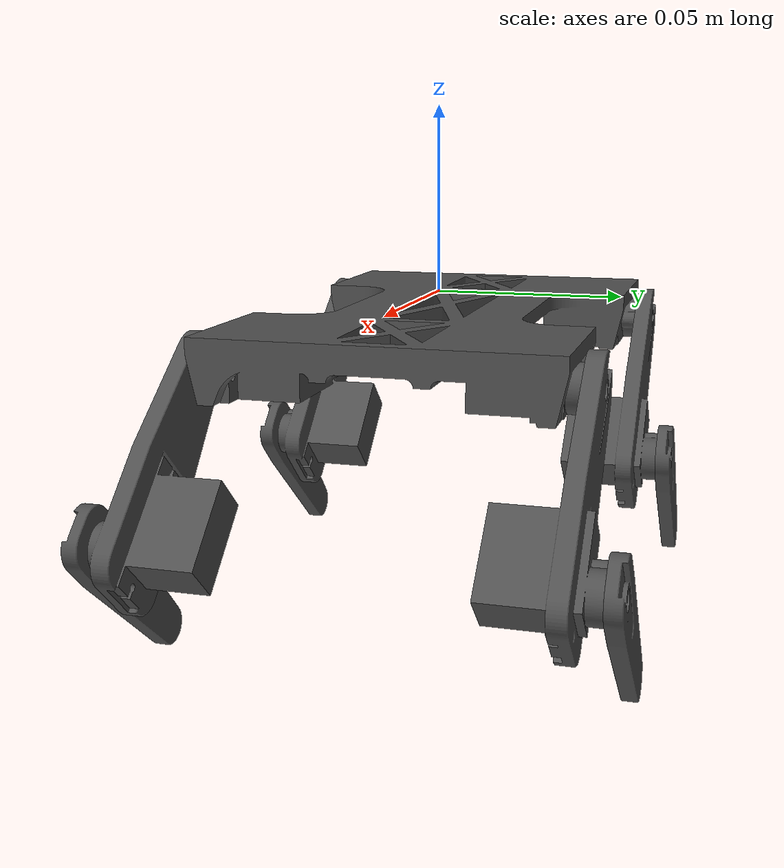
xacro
<?xml version="1.0" ?>
<robot name="svdog2_2" xmlns:xacro="http://www.ros.org/wiki/xacro">

<xacro:include filename="$(find svdog2_2_description)/urdf/materials.xacro" />
<xacro:include filename="$(find svdog2_2_description)/urdf/svdog2_2.trans" />
<link name="base_link">
  <inertial>
    <origin xyz="-5.624212056449514e-05 0.002508800042642536 -0.009416344958760807" rpy="0 0 0"/>
    <mass value="0.07930588131469539"/>
    <inertia ixx="6.5e-05" iyy="0.000179" izz="0.000241" ixy="0.0" iyz="-0.0" ixz="-0.0"/>
  </inertial>
  <visual>
    <origin xyz="0 0 0" rpy="0 0 0"/>
    <geometry>
      <mesh filename="package://svdog2_2_description/meshes/base_link.stl" scale="0.001 0.001 0.001"/>
    </geometry>
    <material name="smooth_white"/>
  </visual>
  <collision>
    <origin xyz="0 0 0" rpy="0 0 0"/>
    <geometry>
      <mesh filename="package://svdog2_2_description/meshes/base_link.stl" scale="0.001 0.001 0.001"/>
    </geometry>
  </collision>
</link>

<link name="servo_leg_test_02_8">
  <inertial>
    <origin xyz="0.02613839119394082 -0.0010712301742271668 -0.026139027739486474" rpy="0 0 0"/>
    <mass value="0.012249665999094939"/>
    <inertia ixx="2e-06" iyy="4e-06" izz="2e-06" ixy="0.0" iyz="-0.0" ixz="1e-06"/>
  </inertial>
  <visual>
    <origin xyz="-0.054744 -0.049309 0.013641" rpy="0 0 0"/>
    <geometry>
      <mesh filename="package://svdog2_2_description/meshes/servo_leg_test_02_8.stl" scale="0.001 0.001 0.001"/>
    </geometry>
    <material name="default"/>
  </visual>
  <collision>
    <origin xyz="-0.054744 -0.049309 0.013641" rpy="0 0 0"/>
    <geometry>
      <mesh filename="package://svdog2_2_description/meshes/servo_leg_test_02_8.stl" scale="0.001 0.001 0.001"/>
    </geometry>
  </collision>
</link>

<link name="servo_leg_test_03_8">
  <inertial>
    <origin xyz="-0.013105445311555428 0.0019695981363026527 -0.013105275734626817" rpy="0 0 0"/>
    <mass value="0.0029430333024557404"/>
    <inertia ixx="0.0" iyy="1e-06" izz="0.0" ixy="0.0" iyz="0.0" ixz="-0.0"/>
  </inertial>
  <visual>
    <origin xyz="-0.090099 -0.059809 0.048997" rpy="0 0 0"/>
    <geometry>
      <mesh filename="package://svdog2_2_description/meshes/servo_leg_test_03_8.stl" scale="0.001 0.001 0.001"/>
    </geometry>
    <material name="1"/>
  </visual>
  <collision>
    <origin xyz="-0.090099 -0.059809 0.048997" rpy="0 0 0"/>
    <geometry>
      <mesh filename="package://svdog2_2_description/meshes/servo_leg_test_03_8.stl" scale="0.001 0.001 0.001"/>
    </geometry>
  </collision>
</link>

<link name="servo_leg_test_02__1__2">
  <inertial>
    <origin xyz="0.026138391193940638 -0.0010712301742272015 -0.026139027739486717" rpy="0 0 0"/>
    <mass value="0.012249665999094907"/>
    <inertia ixx="2e-06" iyy="4e-06" izz="2e-06" ixy="0.0" iyz="-0.0" ixz="1e-06"/>
  </inertial>
  <visual>
    <origin xyz="0.054856 -0.049309 0.013641" rpy="0 0 0"/>
    <geometry>
      <mesh filename="package://svdog2_2_description/meshes/servo_leg_test_02__1__2.stl" scale="0.001 0.001 0.001"/>
    </geometry>
    <material name="default"/>
  </visual>
  <collision>
    <origin xyz="0.054856 -0.049309 0.013641" rpy="0 0 0"/>
    <geometry>
      <mesh filename="package://svdog2_2_description/meshes/servo_leg_test_02__1__2.stl" scale="0.001 0.001 0.001"/>
    </geometry>
  </collision>
</link>

<link name="servo_leg_test_03__1__2">
  <inertial>
    <origin xyz="-0.013105445311555674 0.001969598136302507 -0.01310527573462756" rpy="0 0 0"/>
    <mass value="0.0029430333024557365"/>
    <inertia ixx="0.0" iyy="1e-06" izz="0.0" ixy="0.0" iyz="0.0" ixz="-0.0"/>
  </inertial>
  <visual>
    <origin xyz="0.019501 -0.059809 0.048997" rpy="0 0 0"/>
    <geometry>
      <mesh filename="package://svdog2_2_description/meshes/servo_leg_test_03__1__2.stl" scale="0.001 0.001 0.001"/>
    </geometry>
    <material name="1"/>
  </visual>
  <collision>
    <origin xyz="0.019501 -0.059809 0.048997" rpy="0 0 0"/>
    <geometry>
      <mesh filename="package://svdog2_2_description/meshes/servo_leg_test_03__1__2.stl" scale="0.001 0.001 0.001"/>
    </geometry>
  </collision>
</link>

<link name="servo_leg_test_02__1___1___1__2">
  <inertial>
    <origin xyz="0.026138391193940395 0.0010708302595121288 -0.026139027739486294" rpy="0 0 0"/>
    <mass value="0.012249665999094881"/>
    <inertia ixx="2e-06" iyy="4e-06" izz="2e-06" ixy="-0.0" iyz="0.0" ixz="1e-06"/>
  </inertial>
  <visual>
    <origin xyz="0.054856 0.044291 0.013641" rpy="0 0 0"/>
    <geometry>
      <mesh filename="package://svdog2_2_description/meshes/servo_leg_test_02__1___1___1__2.stl" scale="0.001 0.001 0.001"/>
    </geometry>
    <material name="default"/>
  </visual>
  <collision>
    <origin xyz="0.054856 0.044291 0.013641" rpy="0 0 0"/>
    <geometry>
      <mesh filename="package://svdog2_2_description/meshes/servo_leg_test_02__1___1___1__2.stl" scale="0.001 0.001 0.001"/>
    </geometry>
  </collision>
</link>

<link name="servo_leg_test_03__1___1___1__2">
  <inertial>
    <origin xyz="-0.013105445311555938 -0.0019699980510178433 -0.013105275734626574" rpy="0 0 0"/>
    <mass value="0.002943033302455784"/>
    <inertia ixx="0.0" iyy="1e-06" izz="0.0" ixy="-0.0" iyz="-0.0" ixz="-0.0"/>
  </inertial>
  <visual>
    <origin xyz="0.019501 0.054791 0.048997" rpy="0 0 0"/>
    <geometry>
      <mesh filename="package://svdog2_2_description/meshes/servo_leg_test_03__1___1___1__2.stl" scale="0.001 0.001 0.001"/>
    </geometry>
    <material name="1"/>
  </visual>
  <collision>
    <origin xyz="0.019501 0.054791 0.048997" rpy="0 0 0"/>
    <geometry>
      <mesh filename="package://svdog2_2_description/meshes/servo_leg_test_03__1___1___1__2.stl" scale="0.001 0.001 0.001"/>
    </geometry>
  </collision>
</link>

<link name="servo_leg_test_02__1___1__2">
  <inertial>
    <origin xyz="0.026138391193940166 0.0010708302595124897 -0.026139027739486294" rpy="0 0 0"/>
    <mass value="0.012249665999094921"/>
    <inertia ixx="2e-06" iyy="4e-06" izz="2e-06" ixy="-0.0" iyz="0.0" ixz="1e-06"/>
  </inertial>
  <visual>
    <origin xyz="-0.054744 0.044291 0.013641" rpy="0 0 0"/>
    <geometry>
      <mesh filename="package://svdog2_2_description/meshes/servo_leg_test_02__1___1__2.stl" scale="0.001 0.001 0.001"/>
    </geometry>
    <material name="default"/>
  </visual>
  <collision>
    <origin xyz="-0.054744 0.044291 0.013641" rpy="0 0 0"/>
    <geometry>
      <mesh filename="package://svdog2_2_description/meshes/servo_leg_test_02__1___1__2.stl" scale="0.001 0.001 0.001"/>
    </geometry>
  </collision>
</link>

<link name="servo_leg_test_03__1___1__2">
  <inertial>
    <origin xyz="-0.01310544531155644 -0.0019699980510172743 -0.013105275734626665" rpy="0 0 0"/>
    <mass value="0.002943033302455746"/>
    <inertia ixx="0.0" iyy="1e-06" izz="0.0" ixy="-0.0" iyz="-0.0" ixz="-0.0"/>
  </inertial>
  <visual>
    <origin xyz="-0.090099 0.054791 0.048997" rpy="0 0 0"/>
    <geometry>
      <mesh filename="package://svdog2_2_description/meshes/servo_leg_test_03__1___1__2.stl" scale="0.001 0.001 0.001"/>
    </geometry>
    <material name="1"/>
  </visual>
  <collision>
    <origin xyz="-0.090099 0.054791 0.048997" rpy="0 0 0"/>
    <geometry>
      <mesh filename="package://svdog2_2_description/meshes/servo_leg_test_03__1___1__2.stl" scale="0.001 0.001 0.001"/>
    </geometry>
  </collision>
</link>

<joint name="Rev49" type="revolute">
  <origin xyz="0.054744 0.049309 -0.013641" rpy="0 0 0"/>
  <parent link="base_link"/>
  <child link="servo_leg_test_02_8"/>
  <axis xyz="0.0 -1.0 -0.0"/>
  <limit upper="0.523599" lower="-0.523599" effort="100" velocity="100"/>
</joint>

<joint name="Rev50" type="revolute">
  <origin xyz="0.035355 0.0105 -0.035356" rpy="0 0 0"/>
  <parent link="servo_leg_test_02_8"/>
  <child link="servo_leg_test_03_8"/>
  <axis xyz="-0.0 -1.0 -0.0"/>
  <limit upper="0.523599" lower="-0.523599" effort="100" velocity="100"/>
</joint>

<joint name="Rev51" type="revolute">
  <origin xyz="-0.054856 0.049309 -0.013641" rpy="0 0 0"/>
  <parent link="base_link"/>
  <child link="servo_leg_test_02__1__2"/>
  <axis xyz="0.0 -1.0 -0.0"/>
  <limit upper="0.523599" lower="-0.523599" effort="100" velocity="100"/>
</joint>

<joint name="Rev52" type="revolute">
  <origin xyz="0.035355 0.0105 -0.035356" rpy="0 0 0"/>
  <parent link="servo_leg_test_02__1__2"/>
  <child link="servo_leg_test_03__1__2"/>
  <axis xyz="-0.0 -1.0 -0.0"/>
  <limit upper="0.523599" lower="-0.523599" effort="100" velocity="100"/>
</joint>

<joint name="Rev53" type="revolute">
  <origin xyz="-0.054856 -0.044291 -0.013641" rpy="0 0 0"/>
  <parent link="base_link"/>
  <child link="servo_leg_test_02__1___1___1__2"/>
  <axis xyz="-0.0 1.0 0.0"/>
  <limit upper="0.523599" lower="-0.523599" effort="100" velocity="100"/>
</joint>

<joint name="Rev54" type="revolute">
  <origin xyz="0.035355 -0.0105 -0.035356" rpy="0 0 0"/>
  <parent link="servo_leg_test_02__1___1___1__2"/>
  <child link="servo_leg_test_03__1___1___1__2"/>
  <axis xyz="-0.0 1.0 -0.0"/>
  <limit upper="0.523599" lower="-0.523599" effort="100" velocity="100"/>
</joint>

<joint name="Rev55" type="revolute">
  <origin xyz="0.054744 -0.044291 -0.013641" rpy="0 0 0"/>
  <parent link="base_link"/>
  <child link="servo_leg_test_02__1___1__2"/>
  <axis xyz="-0.0 1.0 0.0"/>
  <limit upper="0.523599" lower="-0.523599" effort="100" velocity="100"/>
</joint>

<joint name="Rev56" type="revolute">
  <origin xyz="0.035355 -0.0105 -0.035356" rpy="0 0 0"/>
  <parent link="servo_leg_test_02__1___1__2"/>
  <child link="servo_leg_test_03__1___1__2"/>
  <axis xyz="-0.0 1.0 0.0"/>
  <limit upper="0.523599" lower="-0.523599" effort="100" velocity="100"/>
</joint>

</robot>

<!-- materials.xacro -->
<robot name="svdog2_2" xmlns:xacro="http://www.ros.org/wiki/xacro" >

<material name="silver_default">
  <color rgba="0.700 0.700 0.700 1.000"/>
</material>
<material name="smooth_white">
  <color rgba="0.3137254901960784 0.3137254901960784 0.3137254901960784 1.0"/>
</material>
<material name="default">
  <color rgba="0.3137254901960784 0.3137254901960784 0.3137254901960784 1.0"/>
</material>
<material name="1">
  <color rgba="0.3137254901960784 0.3137254901960784 0.3137254901960784 1.0"/>
</material>

</robot>
